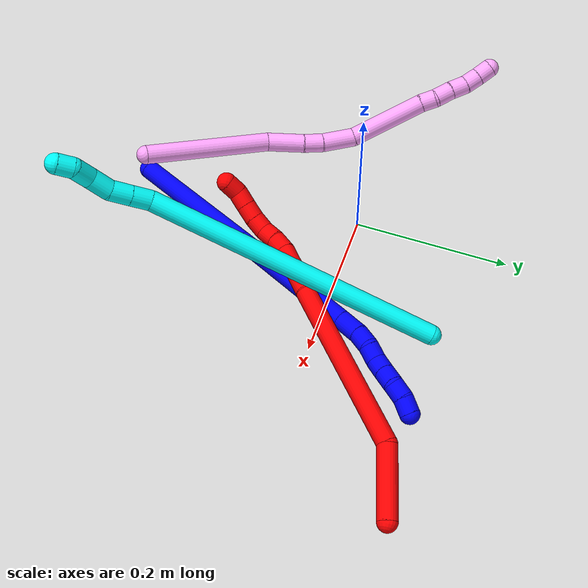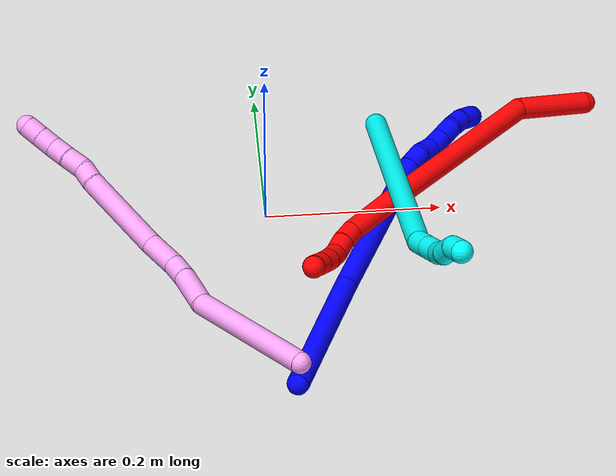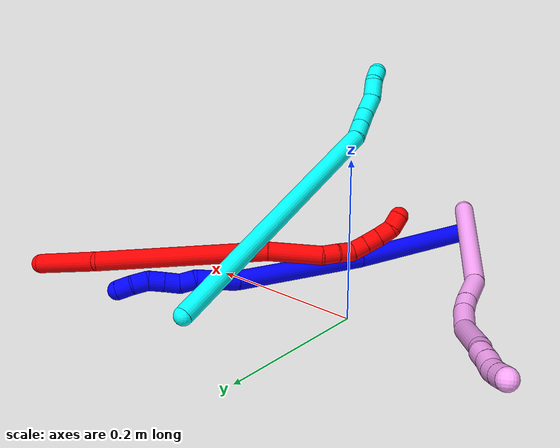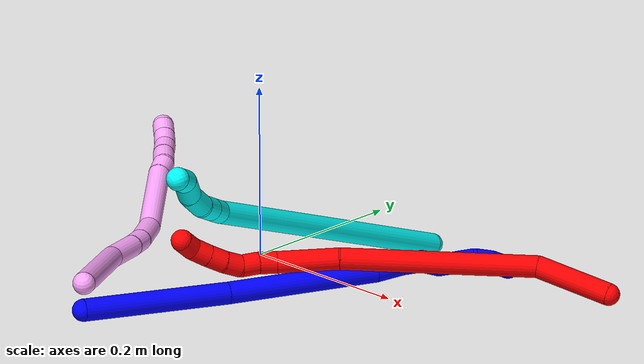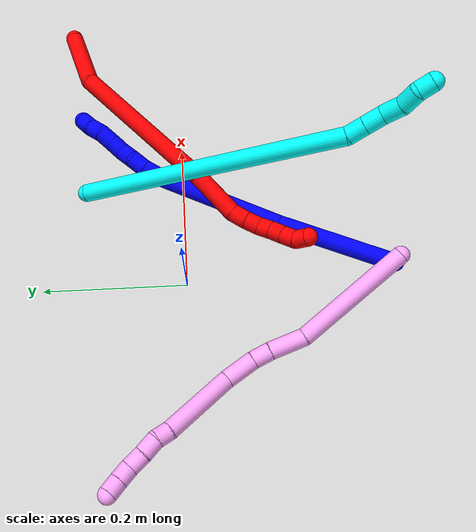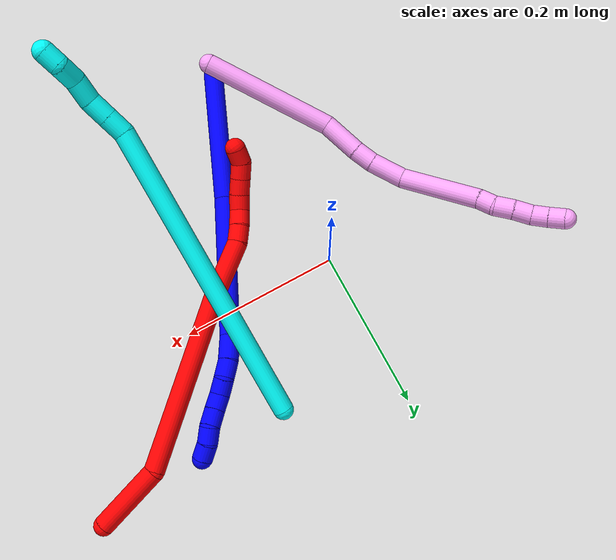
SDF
<sdf version="1.7">
 <world name="default">
  <plugin name="TubeGeneratorPlugin" filename="libtube_generator_plugin.so"/>
  <model name="photoneo_s_sensor">
   <static>1</static>
   <pose>0 0 2 1.57079 1.57079 3.14159</pose>
   <link name="link">
    <inertial><mass>0.1</mass></inertial>
    <sensor name="sensor" type="depth">
     <update_rate>30</update_rate>
     <camera>
      <horizontal_fov>1.22</horizontal_fov>
      <image><width>1920</width><height>1200</height><format>B8G8R8</format></image>
      <clip><near>0.1</near><far>4</far></clip>
      <depth_camera><output>points</output></depth_camera>
     </camera>
     <plugin name="camera_plugin" filename="libgazebo_ros_depth_camera.so">
      <baseline>0.2</baseline>
      <alwaysOn>1</alwaysOn>
      <updateRate>0.0</updateRate>
      <cameraName>camera_ir</cameraName>
      <imageTopicName>/camera/color/image_raw</imageTopicName>
      <cameraInfoTopicName>/camera/color/camera_info</cameraInfoTopicName>
      <depthImageTopicName>/camera/depth/image_raw</depthImageTopicName>
      <depthImageCameraInfoTopicName>/camera/depth/camera_info</depthImageCameraInfoTopicName>
      <pointCloudTopicName>/camera/depth/points</pointCloudTopicName>
      <frameName>fr_optical</frameName>
      <pointCloudCutoff>0.1</pointCloudCutoff>
      <pointCloudCutoffMax>2.0</pointCloudCutoffMax>
      <distortionK1>0</distortionK1>
      <distortionK2>0</distortionK2>
      <distortionK3>0</distortionK3>
      <distortionT1>0</distortionT1>
      <distortionT2>0</distortionT2>
      <CxPrime>0</CxPrime>
      <Cx>0</Cx>
      <Cy>0</Cy>
      <focalLength>0</focalLength>
      <hackBaseline>0</hackBaseline>
     </plugin>
    </sensor>
   </link>
  </model>
  <gravity>0 0 -9.8</gravity>
  <magnetic_field>6e-06 2.3e-05 -4.2e-05</magnetic_field>
  <atmosphere type="adiabatic"/>
  <physics name="default_physics" default="0" type="ode">
   <max_step_size>0.003</max_step_size>
   <real_time_factor>1</real_time_factor>
   <real_time_update_rate>1000</real_time_update_rate>
   <max_contacts>10000</max_contacts>
   <ode>
    <solver>
     <type>quick</type>
     <iters>100</iters>
     <sor>1.3</sor>
     <use_dynamic_moi_rescaling>0</use_dynamic_moi_rescaling>
    </solver>
    <constraints>
     <contact_max_correcting_vel>0</contact_max_correcting_vel>
     <contact_surface_layer>0.001</contact_surface_layer>
     <cfm>0</cfm>
     <erp>0.2</erp>
    </constraints>
   </ode>
  </physics>
  <scene><ambient>0.4 0.4 0.4 1</ambient><background>0.7 0.7 0.7 1</background><shadows>0</shadows></scene>
  <audio><device>default</device></audio>
  <spherical_coordinates>
   <surface_model>EARTH_WGS84</surface_model>
   <latitude_deg>0</latitude_deg>
   <longitude_deg>0</longitude_deg>
   <elevation>0</elevation>
   <heading_deg>0</heading_deg>
  </spherical_coordinates>
  <model name="bin">
   <static>1</static>
   <link name="bottom">
    <collision name="collision-bottom">
     <pose>0 0 -0.01 0 -0 0</pose>
     <geometry><box><size>0.8 0.6 0.02</size></box></geometry>
     <surface>
      <friction><ode><mu>100</mu><mu2>100</mu2></ode></friction>
      <contact><collide_bitmask>65535</collide_bitmask></contact>
     </surface>
    </collision>
   </link>
   <link name="west_wall">
    <collision name="collision-west_wall">
     <pose>-0.41 0 0.1 0 -0 0</pose>
     <geometry><box><size>0.02 0.6 0.2</size></box></geometry>
     <surface>
      <friction><ode><mu>100</mu><mu2>100</mu2></ode></friction>
      <contact><collide_bitmask>65535</collide_bitmask></contact>
     </surface>
    </collision>
   </link>
   <link name="east_wall">
    <collision name="collision-east_wall">
     <pose>0.41 0 0.1 0 -0 0</pose>
     <geometry><box><size>0.02 0.6 0.2</size></box></geometry>
     <surface>
      <friction><ode><mu>100</mu><mu2>100</mu2></ode></friction>
      <contact><collide_bitmask>65535</collide_bitmask></contact>
     </surface>
    </collision>
   </link>
   <link name="south_wall">
    <collision name="collision-south_wall">
     <pose>0 -0.31 0.1 0 -0 0</pose>
     <geometry><box><size>0.8 0.02 0.2</size></box></geometry>
     <surface>
      <friction><ode><mu>100</mu><mu2>100</mu2></ode></friction>
      <contact><collide_bitmask>65535</collide_bitmask></contact>
     </surface>
    </collision>
   </link>
   <link name="north_wall">
    <collision name="collision-north_wall">
     <pose>0 0.31 0.1 0 -0 0</pose>
     <geometry><box><size>0.8 0.02 0.2</size></box></geometry>
     <surface>
      <friction><ode><mu>100</mu><mu2>100</mu2></ode></friction>
      <contact><collide_bitmask>65535</collide_bitmask></contact>
     </surface>
    </collision>
   </link>
  </model>
  <model name="1">
   <static>0</static>
   <link name="1">
    <collision name="collision-cylinder-e_1_1_4">
     <pose>0.024286 0.045576 -0.06728 -2.54618 0.290408 -0.889516</pose>
     <geometry><cylinder><radius>0.0125</radius><length>0.16963</length></cylinder></geometry>
     <surface>
      <friction><ode><mu>1.16</mu><mu2>1.16</mu2><slip1>0</slip1><slip2>0</slip2></ode></friction>
      <contact><ode><kp>1e+06</kp><kd>1</kd><max_vel>0</max_vel><min_depth>0.001</min_depth></ode></contact>
     </surface>
    </collision>
    <visual name="visual-cylinder-e_1_1_4">
     <pose>0.024286 0.045576 -0.06728 -2.54618 0.290408 -0.889516</pose>
     <geometry><cylinder><radius>0.0125</radius><length>0.16963</length></cylinder></geometry>
     <material><ambient>0 0 1 1</ambient></material>
    </visual>
    <collision name="collision-cylinder-e_2_4_5">
     <pose>0.069329 0.136711 -0.206896 -2.57954 0.238193 -0.785953</pose>
     <geometry><cylinder><radius>0.0125</radius><length>0.175943</length></cylinder></geometry>
     <surface>
      <friction><ode><mu>1.16</mu><mu2>1.16</mu2><slip1>0</slip1><slip2>0</slip2></ode></friction>
      <contact><ode><kp>1e+06</kp><kd>1</kd><max_vel>0</max_vel><min_depth>0.001</min_depth></ode></contact>
     </surface>
    </collision>
    <visual name="visual-cylinder-e_2_4_5">
     <pose>0.069329 0.136711 -0.206896 -2.57954 0.238193 -0.785953</pose>
     <geometry><cylinder><radius>0.0125</radius><length>0.175943</length></cylinder></geometry>
     <material><ambient>0 0 1 1</ambient></material>
    </visual>
    <collision name="collision-cylinder-e_3_5_6">
     <pose>0.091733 0.188823 -0.293409 -2.70855 0.105061 -0.469246</pose>
     <geometry><cylinder><radius>0.0125</radius><length>0.031411</length></cylinder></geometry>
     <surface>
      <friction><ode><mu>1.16</mu><mu2>1.16</mu2><slip1>0</slip1><slip2>0</slip2></ode></friction>
      <contact><ode><kp>1e+06</kp><kd>1</kd><max_vel>0</max_vel><min_depth>0.001</min_depth></ode></contact>
     </surface>
    </collision>
    <visual name="visual-cylinder-e_3_5_6">
     <pose>0.091733 0.188823 -0.293409 -2.70855 0.105061 -0.469246</pose>
     <geometry><cylinder><radius>0.0125</radius><length>0.031411</length></cylinder></geometry>
     <material><ambient>0 0 1 1</ambient></material>
    </visual>
    <collision name="collision-cylinder-e_4_6_7">
     <pose>0.092827 0.200969 -0.317193 -2.61454 -0.049691 0.183696</pose>
     <geometry><cylinder><radius>0.0125</radius><length>0.022258</length></cylinder></geometry>
     <surface>
      <friction><ode><mu>1.16</mu><mu2>1.16</mu2><slip1>0</slip1><slip2>0</slip2></ode></friction>
      <contact><ode><kp>1e+06</kp><kd>1</kd><max_vel>0</max_vel><min_depth>0.001</min_depth></ode></contact>
     </surface>
    </collision>
    <visual name="visual-cylinder-e_4_6_7">
     <pose>0.092827 0.200969 -0.317193 -2.61454 -0.049691 0.183696</pose>
     <geometry><cylinder><radius>0.0125</radius><length>0.022258</length></cylinder></geometry>
     <material><ambient>0 0 1 1</ambient></material>
    </visual>
    <collision name="collision-cylinder-e_5_7_8">
     <pose>0.092258 0.214561 -0.333128 -2.23988 -0.001602 0.003309</pose>
     <geometry><cylinder><radius>0.0125</radius><length>0.020403</length></cylinder></geometry>
     <surface>
      <friction><ode><mu>1.16</mu><mu2>1.16</mu2><slip1>0</slip1><slip2>0</slip2></ode></friction>
      <contact><ode><kp>1e+06</kp><kd>1</kd><max_vel>0</max_vel><min_depth>0.001</min_depth></ode></contact>
     </surface>
    </collision>
    <visual name="visual-cylinder-e_5_7_8">
     <pose>0.092258 0.214561 -0.333128 -2.23988 -0.001602 0.003309</pose>
     <geometry><cylinder><radius>0.0125</radius><length>0.020403</length></cylinder></geometry>
     <material><ambient>0 0 1 1</ambient></material>
    </visual>
    <collision name="collision-cylinder-e_6_8_9">
     <pose>0.090992 0.22744 -0.348107 -2.6283 -0.125103 0.468558</pose>
     <geometry><cylinder><radius>0.0125</radius><length>0.020019</length></cylinder></geometry>
     <surface>
      <friction><ode><mu>1.16</mu><mu2>1.16</mu2><slip1>0</slip1><slip2>0</slip2></ode></friction>
      <contact><ode><kp>1e+06</kp><kd>1</kd><max_vel>0</max_vel><min_depth>0.001</min_depth></ode></contact>
     </surface>
    </collision>
    <visual name="visual-cylinder-e_6_8_9">
     <pose>0.090992 0.22744 -0.348107 -2.6283 -0.125103 0.468558</pose>
     <geometry><cylinder><radius>0.0125</radius><length>0.020019</length></cylinder></geometry>
     <material><ambient>0 0 1 1</ambient></material>
    </visual>
    <collision name="collision-cylinder-e_7_9_10">
     <pose>0.088758 0.237253 -0.365474 -2.62634 -0.098095 0.368375</pose>
     <geometry><cylinder><radius>0.0125</radius><length>0.020131</length></cylinder></geometry>
     <surface>
      <friction><ode><mu>1.16</mu><mu2>1.16</mu2><slip1>0</slip1><slip2>0</slip2></ode></friction>
      <contact><ode><kp>1e+06</kp><kd>1</kd><max_vel>0</max_vel><min_depth>0.001</min_depth></ode></contact>
     </surface>
    </collision>
    <visual name="visual-cylinder-e_7_9_10">
     <pose>0.088758 0.237253 -0.365474 -2.62634 -0.098095 0.368375</pose>
     <geometry><cylinder><radius>0.0125</radius><length>0.020131</length></cylinder></geometry>
     <material><ambient>0 0 1 1</ambient></material>
    </visual>
    <collision name="collision-cylinder-e_8_10_11">
     <pose>0.088775 0.249444 -0.381018 -2.32574 0.100327 -0.231308</pose>
     <geometry><cylinder><radius>0.0125</radius><length>0.020025</length></cylinder></geometry>
     <surface>
      <friction><ode><mu>1.16</mu><mu2>1.16</mu2><slip1>0</slip1><slip2>0</slip2></ode></friction>
      <contact><ode><kp>1e+06</kp><kd>1</kd><max_vel>0</max_vel><min_depth>0.001</min_depth></ode></contact>
     </surface>
    </collision>
    <visual name="visual-cylinder-e_8_10_11">
     <pose>0.088775 0.249444 -0.381018 -2.32574 0.100327 -0.231308</pose>
     <geometry><cylinder><radius>0.0125</radius><length>0.020025</length></cylinder></geometry>
     <material><ambient>0 0 1 1</ambient></material>
    </visual>
    <collision name="collision-cylinder-e_9_11_2">
     <pose>0.089337 0.265281 -0.393135 -2.12326 -0.043658 0.078175</pose>
     <geometry><cylinder><radius>0.0125</radius><length>0.020181</length></cylinder></geometry>
     <surface>
      <friction><ode><mu>1.16</mu><mu2>1.16</mu2><slip1>0</slip1><slip2>0</slip2></ode></friction>
      <contact><ode><kp>1e+06</kp><kd>1</kd><max_vel>0</max_vel><min_depth>0.001</min_depth></ode></contact>
     </surface>
    </collision>
    <visual name="visual-cylinder-e_9_11_2">
     <pose>0.089337 0.265281 -0.393135 -2.12326 -0.043658 0.078175</pose>
     <geometry><cylinder><radius>0.0125</radius><length>0.020181</length></cylinder></geometry>
     <material><ambient>0 0 1 1</ambient></material>
    </visual>
    <collision name="collision-sphere-2">
     <pose>0.088897 0.273862 -0.398425 0 -0 0</pose>
     <geometry><sphere><radius>0.0125</radius></sphere></geometry>
     <surface>
      <friction><ode><mu>1.16</mu><mu2>1.16</mu2><slip1>0</slip1><slip2>0</slip2></ode></friction>
      <contact><ode><kp>1e+06</kp><kd>1</kd><max_vel>0</max_vel><min_depth>0.001</min_depth></ode></contact>
     </surface>
    </collision>
    <visual name="visual-sphere-2">
     <pose>0.088897 0.273862 -0.398425 0 -0 0</pose>
     <geometry><sphere><radius>0.0125</radius></sphere></geometry>
     <material><ambient>0 0 1 1</ambient></material>
    </visual>
    <collision name="collision-sphere-11">
     <pose>0.089778 0.2567 -0.387844 0 -0 0</pose>
     <geometry><sphere><radius>0.0125</radius></sphere></geometry>
     <surface>
      <friction><ode><mu>1.16</mu><mu2>1.16</mu2><slip1>0</slip1><slip2>0</slip2></ode></friction>
      <contact><ode><kp>1e+06</kp><kd>1</kd><max_vel>0</max_vel><min_depth>0.001</min_depth></ode></contact>
     </surface>
    </collision>
    <visual name="visual-sphere-11">
     <pose>0.089778 0.2567 -0.387844 0 -0 0</pose>
     <geometry><sphere><radius>0.0125</radius></sphere></geometry>
     <material><ambient>0 0 1 1</ambient></material>
    </visual>
    <collision name="collision-sphere-10">
     <pose>0.087772 0.242188 -0.374191 0 -0 0</pose>
     <geometry><sphere><radius>0.0125</radius></sphere></geometry>
     <surface>
      <friction><ode><mu>1.16</mu><mu2>1.16</mu2><slip1>0</slip1><slip2>0</slip2></ode></friction>
      <contact><ode><kp>1e+06</kp><kd>1</kd><max_vel>0</max_vel><min_depth>0.001</min_depth></ode></contact>
     </surface>
    </collision>
    <visual name="visual-sphere-10">
     <pose>0.087772 0.242188 -0.374191 0 -0 0</pose>
     <geometry><sphere><radius>0.0125</radius></sphere></geometry>
     <material><ambient>0 0 1 1</ambient></material>
    </visual>
    <collision name="collision-sphere-9">
     <pose>0.089743 0.232317 -0.356758 0 -0 0</pose>
     <geometry><sphere><radius>0.0125</radius></sphere></geometry>
     <surface>
      <friction><ode><mu>1.16</mu><mu2>1.16</mu2><slip1>0</slip1><slip2>0</slip2></ode></friction>
      <contact><ode><kp>1e+06</kp><kd>1</kd><max_vel>0</max_vel><min_depth>0.001</min_depth></ode></contact>
     </surface>
    </collision>
    <visual name="visual-sphere-9">
     <pose>0.089743 0.232317 -0.356758 0 -0 0</pose>
     <geometry><sphere><radius>0.0125</radius></sphere></geometry>
     <material><ambient>0 0 1 1</ambient></material>
    </visual>
    <collision name="collision-sphere-4">
     <pose>0.048572 0.091153 -0.134559 0 -0 0</pose>
     <geometry><sphere><radius>0.0125</radius></sphere></geometry>
     <surface>
      <friction><ode><mu>1.16</mu><mu2>1.16</mu2><slip1>0</slip1><slip2>0</slip2></ode></friction>
      <contact><ode><kp>1e+06</kp><kd>1</kd><max_vel>0</max_vel><min_depth>0.001</min_depth></ode></contact>
     </surface>
    </collision>
    <visual name="visual-sphere-4">
     <pose>0.048572 0.091153 -0.134559 0 -0 0</pose>
     <geometry><sphere><radius>0.0125</radius></sphere></geometry>
     <material><ambient>0 0 1 1</ambient></material>
    </visual>
    <collision name="collision-sphere-1">
     <geometry><sphere><radius>0.0125</radius></sphere></geometry>
     <surface>
      <friction><ode><mu>1.16</mu><mu2>1.16</mu2><slip1>0</slip1><slip2>0</slip2></ode></friction>
      <contact><ode><kp>1e+06</kp><kd>1</kd><max_vel>0</max_vel><min_depth>0.001</min_depth></ode></contact>
     </surface>
    </collision>
    <visual name="visual-sphere-1">
     <geometry><sphere><radius>0.0125</radius></sphere></geometry>
     <material><ambient>0 0 1 1</ambient></material>
    </visual>
    <collision name="collision-sphere-8">
     <pose>0.092241 0.222563 -0.339455 0 -0 0</pose>
     <geometry><sphere><radius>0.0125</radius></sphere></geometry>
     <surface>
      <friction><ode><mu>1.16</mu><mu2>1.16</mu2><slip1>0</slip1><slip2>0</slip2></ode></friction>
      <contact><ode><kp>1e+06</kp><kd>1</kd><max_vel>0</max_vel><min_depth>0.001</min_depth></ode></contact>
     </surface>
    </collision>
    <visual name="visual-sphere-8">
     <pose>0.092241 0.222563 -0.339455 0 -0 0</pose>
     <geometry><sphere><radius>0.0125</radius></sphere></geometry>
     <material><ambient>0 0 1 1</ambient></material>
    </visual>
    <collision name="collision-sphere-5">
     <pose>0.090086 0.182269 -0.279232 0 -0 0</pose>
     <geometry><sphere><radius>0.0125</radius></sphere></geometry>
     <surface>
      <friction><ode><mu>1.16</mu><mu2>1.16</mu2><slip1>0</slip1><slip2>0</slip2></ode></friction>
      <contact><ode><kp>1e+06</kp><kd>1</kd><max_vel>0</max_vel><min_depth>0.001</min_depth></ode></contact>
     </surface>
    </collision>
    <visual name="visual-sphere-5">
     <pose>0.090086 0.182269 -0.279232 0 -0 0</pose>
     <geometry><sphere><radius>0.0125</radius></sphere></geometry>
     <material><ambient>0 0 1 1</ambient></material>
    </visual>
    <collision name="collision-sphere-6">
     <pose>0.09338 0.195378 -0.307586 0 -0 0</pose>
     <geometry><sphere><radius>0.0125</radius></sphere></geometry>
     <surface>
      <friction><ode><mu>1.16</mu><mu2>1.16</mu2><slip1>0</slip1><slip2>0</slip2></ode></friction>
      <contact><ode><kp>1e+06</kp><kd>1</kd><max_vel>0</max_vel><min_depth>0.001</min_depth></ode></contact>
     </surface>
    </collision>
    <visual name="visual-sphere-6">
     <pose>0.09338 0.195378 -0.307586 0 -0 0</pose>
     <geometry><sphere><radius>0.0125</radius></sphere></geometry>
     <material><ambient>0 0 1 1</ambient></material>
    </visual>
    <collision name="collision-sphere-7">
     <pose>0.092274 0.20656 -0.3268 0 -0 0</pose>
     <geometry><sphere><radius>0.0125</radius></sphere></geometry>
     <surface>
      <friction><ode><mu>1.16</mu><mu2>1.16</mu2><slip1>0</slip1><slip2>0</slip2></ode></friction>
      <contact><ode><kp>1e+06</kp><kd>1</kd><max_vel>0</max_vel><min_depth>0.001</min_depth></ode></contact>
     </surface>
    </collision>
    <visual name="visual-sphere-7">
     <pose>0.092274 0.20656 -0.3268 0 -0 0</pose>
     <geometry><sphere><radius>0.0125</radius></sphere></geometry>
     <material><ambient>0 0 1 1</ambient></material>
    </visual>
    <inertial>
     <pose>0.060673 0.132489 -0.201555 0 -0 0</pose>
     <mass>0.5</mass>
     <inertia>
      <ixx>-4e-05</ixx>
      <ixy>0</ixy>
      <ixz>0</ixz>
      <iyy>-0.001011</iyy>
      <iyz>0</iyz>
      <izz>-0.000726</izz>
     </inertia>
    </inertial>
   </link>
   <pose>0.015284 -0.288462 0.017858 -2.21345 0.286476 2.45443</pose>
  </model>
  <model name="2">
   <static>0</static>
   <link name="2">
    <collision name="collision-cylinder-e_1_1_4">
     <pose>-0.007925 -0.003229 -0.042966 3.06659 -0.181894 -2.36102</pose>
     <geometry><cylinder><radius>0.0125</radius><length>0.087619</length></cylinder></geometry>
     <surface>
      <friction><ode><mu>1.16</mu><mu2>1.16</mu2><slip1>0</slip1><slip2>0</slip2></ode></friction>
      <contact><ode><kp>1e+06</kp><kd>1</kd><max_vel>0</max_vel><min_depth>0.001</min_depth></ode></contact>
     </surface>
    </collision>
    <visual name="visual-cylinder-e_1_1_4">
     <pose>-0.007925 -0.003229 -0.042966 3.06659 -0.181894 -2.36102</pose>
     <geometry><cylinder><radius>0.0125</radius><length>0.087619</length></cylinder></geometry>
     <material><ambient>1 0 0 1</ambient></material>
    </visual>
    <collision name="collision-cylinder-e_2_4_5">
     <pose>-0.068903 -0.04935 -0.172375 2.68099 -0.502669 -1.66155</pose>
     <geometry><cylinder><radius>0.0125</radius><length>0.220246</length></cylinder></geometry>
     <surface>
      <friction><ode><mu>1.16</mu><mu2>1.16</mu2><slip1>0</slip1><slip2>0</slip2></ode></friction>
      <contact><ode><kp>1e+06</kp><kd>1</kd><max_vel>0</max_vel><min_depth>0.001</min_depth></ode></contact>
     </surface>
    </collision>
    <visual name="visual-cylinder-e_2_4_5">
     <pose>-0.068903 -0.04935 -0.172375 2.68099 -0.502669 -1.66155</pose>
     <geometry><cylinder><radius>0.0125</radius><length>0.220246</length></cylinder></geometry>
     <material><ambient>1 0 0 1</ambient></material>
    </visual>
    <collision name="collision-cylinder-e_3_5_6">
     <pose>-0.135319 -0.109112 -0.286566 2.59534 -0.390389 -1.22921</pose>
     <geometry><cylinder><radius>0.0125</radius><length>0.070227</length></cylinder></geometry>
     <surface>
      <friction><ode><mu>1.16</mu><mu2>1.16</mu2><slip1>0</slip1><slip2>0</slip2></ode></friction>
      <contact><ode><kp>1e+06</kp><kd>1</kd><max_vel>0</max_vel><min_depth>0.001</min_depth></ode></contact>
     </surface>
    </collision>
    <visual name="visual-cylinder-e_3_5_6">
     <pose>-0.135319 -0.109112 -0.286566 2.59534 -0.390389 -1.22921</pose>
     <geometry><cylinder><radius>0.0125</radius><length>0.070227</length></cylinder></geometry>
     <material><ambient>1 0 0 1</ambient></material>
    </visual>
    <collision name="collision-cylinder-e_4_6_7">
     <pose>-0.155353 -0.130664 -0.321192 2.54398 -0.675745 -1.70199</pose>
     <geometry><cylinder><radius>0.0125</radius><length>0.021333</length></cylinder></geometry>
     <surface>
      <friction><ode><mu>1.16</mu><mu2>1.16</mu2><slip1>0</slip1><slip2>0</slip2></ode></friction>
      <contact><ode><kp>1e+06</kp><kd>1</kd><max_vel>0</max_vel><min_depth>0.001</min_depth></ode></contact>
     </surface>
    </collision>
    <visual name="visual-cylinder-e_4_6_7">
     <pose>-0.155353 -0.130664 -0.321192 2.54398 -0.675745 -1.70199</pose>
     <geometry><cylinder><radius>0.0125</radius><length>0.021333</length></cylinder></geometry>
     <material><ambient>1 0 0 1</ambient></material>
    </visual>
    <collision name="collision-cylinder-e_5_7_8">
     <pose>-0.168609 -0.140879 -0.33353 2.34935 -0.702838 -1.43952</pose>
     <geometry><cylinder><radius>0.0125</radius><length>0.020371</length></cylinder></geometry>
     <surface>
      <friction><ode><mu>1.16</mu><mu2>1.16</mu2><slip1>0</slip1><slip2>0</slip2></ode></friction>
      <contact><ode><kp>1e+06</kp><kd>1</kd><max_vel>0</max_vel><min_depth>0.001</min_depth></ode></contact>
     </surface>
    </collision>
    <visual name="visual-cylinder-e_5_7_8">
     <pose>-0.168609 -0.140879 -0.33353 2.34935 -0.702838 -1.43952</pose>
     <geometry><cylinder><radius>0.0125</radius><length>0.020371</length></cylinder></geometry>
     <material><ambient>1 0 0 1</ambient></material>
    </visual>
    <collision name="collision-cylinder-e_6_8_9">
     <pose>-0.183229 -0.147998 -0.344873 2.87847 -0.921905 -2.62081</pose>
     <geometry><cylinder><radius>0.0125</radius><length>0.020173</length></cylinder></geometry>
     <surface>
      <friction><ode><mu>1.16</mu><mu2>1.16</mu2><slip1>0</slip1><slip2>0</slip2></ode></friction>
      <contact><ode><kp>1e+06</kp><kd>1</kd><max_vel>0</max_vel><min_depth>0.001</min_depth></ode></contact>
     </surface>
    </collision>
    <visual name="visual-cylinder-e_6_8_9">
     <pose>-0.183229 -0.147998 -0.344873 2.87847 -0.921905 -2.62081</pose>
     <geometry><cylinder><radius>0.0125</radius><length>0.020173</length></cylinder></geometry>
     <material><ambient>1 0 0 1</ambient></material>
    </visual>
    <collision name="collision-cylinder-e_7_9_10">
     <pose>-0.19885 -0.150097 -0.357263 3.06279 -0.860416 -2.9702</pose>
     <geometry><cylinder><radius>0.0125</radius><length>0.020009</length></cylinder></geometry>
     <surface>
      <friction><ode><mu>1.16</mu><mu2>1.16</mu2><slip1>0</slip1><slip2>0</slip2></ode></friction>
      <contact><ode><kp>1e+06</kp><kd>1</kd><max_vel>0</max_vel><min_depth>0.001</min_depth></ode></contact>
     </surface>
    </collision>
    <visual name="visual-cylinder-e_7_9_10">
     <pose>-0.19885 -0.150097 -0.357263 3.06279 -0.860416 -2.9702</pose>
     <geometry><cylinder><radius>0.0125</radius><length>0.020009</length></cylinder></geometry>
     <material><ambient>1 0 0 1</ambient></material>
    </visual>
    <collision name="collision-cylinder-e_8_10_11">
     <pose>-0.214089 -0.150592 -0.37021 -3.13878 -0.871055 3.13554</pose>
     <geometry><cylinder><radius>0.0125</radius><length>0.020009</length></cylinder></geometry>
     <surface>
      <friction><ode><mu>1.16</mu><mu2>1.16</mu2><slip1>0</slip1><slip2>0</slip2></ode></friction>
      <contact><ode><kp>1e+06</kp><kd>1</kd><max_vel>0</max_vel><min_depth>0.001</min_depth></ode></contact>
     </surface>
    </collision>
    <visual name="visual-cylinder-e_8_10_11">
     <pose>-0.214089 -0.150592 -0.37021 -3.13878 -0.871055 3.13554</pose>
     <geometry><cylinder><radius>0.0125</radius><length>0.020009</length></cylinder></geometry>
     <material><ambient>1 0 0 1</ambient></material>
    </visual>
    <collision name="collision-cylinder-e_9_11_2">
     <pose>-0.23123 -0.148587 -0.379133 -2.46603 -1.2476 2.23348</pose>
     <geometry><cylinder><radius>0.0125</radius><length>0.020012</length></cylinder></geometry>
     <surface>
      <friction><ode><mu>1.16</mu><mu2>1.16</mu2><slip1>0</slip1><slip2>0</slip2></ode></friction>
      <contact><ode><kp>1e+06</kp><kd>1</kd><max_vel>0</max_vel><min_depth>0.001</min_depth></ode></contact>
     </surface>
    </collision>
    <visual name="visual-cylinder-e_9_11_2">
     <pose>-0.23123 -0.148587 -0.379133 -2.46603 -1.2476 2.23348</pose>
     <geometry><cylinder><radius>0.0125</radius><length>0.020012</length></cylinder></geometry>
     <material><ambient>1 0 0 1</ambient></material>
    </visual>
    <collision name="collision-sphere-2">
     <pose>-0.240718 -0.1466 -0.381613 0 -0 0</pose>
     <geometry><sphere><radius>0.0125</radius></sphere></geometry>
     <surface>
      <friction><ode><mu>1.16</mu><mu2>1.16</mu2><slip1>0</slip1><slip2>0</slip2></ode></friction>
      <contact><ode><kp>1e+06</kp><kd>1</kd><max_vel>0</max_vel><min_depth>0.001</min_depth></ode></contact>
     </surface>
    </collision>
    <visual name="visual-sphere-2">
     <pose>-0.240718 -0.1466 -0.381613 0 -0 0</pose>
     <geometry><sphere><radius>0.0125</radius></sphere></geometry>
     <material><ambient>1 0 0 1</ambient></material>
    </visual>
    <collision name="collision-sphere-11">
     <pose>-0.221742 -0.150574 -0.376653 0 -0 0</pose>
     <geometry><sphere><radius>0.0125</radius></sphere></geometry>
     <surface>
      <friction><ode><mu>1.16</mu><mu2>1.16</mu2><slip1>0</slip1><slip2>0</slip2></ode></friction>
      <contact><ode><kp>1e+06</kp><kd>1</kd><max_vel>0</max_vel><min_depth>0.001</min_depth></ode></contact>
     </surface>
    </collision>
    <visual name="visual-sphere-11">
     <pose>-0.221742 -0.150574 -0.376653 0 -0 0</pose>
     <geometry><sphere><radius>0.0125</radius></sphere></geometry>
     <material><ambient>1 0 0 1</ambient></material>
    </visual>
    <collision name="collision-sphere-10">
     <pose>-0.206435 -0.15061 -0.363767 0 -0 0</pose>
     <geometry><sphere><radius>0.0125</radius></sphere></geometry>
     <surface>
      <friction><ode><mu>1.16</mu><mu2>1.16</mu2><slip1>0</slip1><slip2>0</slip2></ode></friction>
      <contact><ode><kp>1e+06</kp><kd>1</kd><max_vel>0</max_vel><min_depth>0.001</min_depth></ode></contact>
     </surface>
    </collision>
    <visual name="visual-sphere-10">
     <pose>-0.206435 -0.15061 -0.363767 0 -0 0</pose>
     <geometry><sphere><radius>0.0125</radius></sphere></geometry>
     <material><ambient>1 0 0 1</ambient></material>
    </visual>
    <collision name="collision-sphere-9">
     <pose>-0.191266 -0.149583 -0.350759 0 -0 0</pose>
     <geometry><sphere><radius>0.0125</radius></sphere></geometry>
     <surface>
      <friction><ode><mu>1.16</mu><mu2>1.16</mu2><slip1>0</slip1><slip2>0</slip2></ode></friction>
      <contact><ode><kp>1e+06</kp><kd>1</kd><max_vel>0</max_vel><min_depth>0.001</min_depth></ode></contact>
     </surface>
    </collision>
    <visual name="visual-sphere-9">
     <pose>-0.191266 -0.149583 -0.350759 0 -0 0</pose>
     <geometry><sphere><radius>0.0125</radius></sphere></geometry>
     <material><ambient>1 0 0 1</ambient></material>
    </visual>
    <collision name="collision-sphere-4">
     <pose>-0.01585 -0.006457 -0.085931 0 -0 0</pose>
     <geometry><sphere><radius>0.0125</radius></sphere></geometry>
     <surface>
      <friction><ode><mu>1.16</mu><mu2>1.16</mu2><slip1>0</slip1><slip2>0</slip2></ode></friction>
      <contact><ode><kp>1e+06</kp><kd>1</kd><max_vel>0</max_vel><min_depth>0.001</min_depth></ode></contact>
     </surface>
    </collision>
    <visual name="visual-sphere-4">
     <pose>-0.01585 -0.006457 -0.085931 0 -0 0</pose>
     <geometry><sphere><radius>0.0125</radius></sphere></geometry>
     <material><ambient>1 0 0 1</ambient></material>
    </visual>
    <collision name="collision-sphere-1">
     <geometry><sphere><radius>0.0125</radius></sphere></geometry>
     <surface>
      <friction><ode><mu>1.16</mu><mu2>1.16</mu2><slip1>0</slip1><slip2>0</slip2></ode></friction>
      <contact><ode><kp>1e+06</kp><kd>1</kd><max_vel>0</max_vel><min_depth>0.001</min_depth></ode></contact>
     </surface>
    </collision>
    <visual name="visual-sphere-1">
     <geometry><sphere><radius>0.0125</radius></sphere></geometry>
     <material><ambient>1 0 0 1</ambient></material>
    </visual>
    <collision name="collision-sphere-8">
     <pose>-0.175193 -0.146412 -0.338988 0 -0 0</pose>
     <geometry><sphere><radius>0.0125</radius></sphere></geometry>
     <surface>
      <friction><ode><mu>1.16</mu><mu2>1.16</mu2><slip1>0</slip1><slip2>0</slip2></ode></friction>
      <contact><ode><kp>1e+06</kp><kd>1</kd><max_vel>0</max_vel><min_depth>0.001</min_depth></ode></contact>
     </surface>
    </collision>
    <visual name="visual-sphere-8">
     <pose>-0.175193 -0.146412 -0.338988 0 -0 0</pose>
     <geometry><sphere><radius>0.0125</radius></sphere></geometry>
     <material><ambient>1 0 0 1</ambient></material>
    </visual>
    <collision name="collision-sphere-5">
     <pose>-0.121957 -0.092243 -0.258819 0 -0 0</pose>
     <geometry><sphere><radius>0.0125</radius></sphere></geometry>
     <surface>
      <friction><ode><mu>1.16</mu><mu2>1.16</mu2><slip1>0</slip1><slip2>0</slip2></ode></friction>
      <contact><ode><kp>1e+06</kp><kd>1</kd><max_vel>0</max_vel><min_depth>0.001</min_depth></ode></contact>
     </surface>
    </collision>
    <visual name="visual-sphere-5">
     <pose>-0.121957 -0.092243 -0.258819 0 -0 0</pose>
     <geometry><sphere><radius>0.0125</radius></sphere></geometry>
     <material><ambient>1 0 0 1</ambient></material>
    </visual>
    <collision name="collision-sphere-6">
     <pose>-0.148682 -0.125981 -0.314312 0 -0 0</pose>
     <geometry><sphere><radius>0.0125</radius></sphere></geometry>
     <surface>
      <friction><ode><mu>1.16</mu><mu2>1.16</mu2><slip1>0</slip1><slip2>0</slip2></ode></friction>
      <contact><ode><kp>1e+06</kp><kd>1</kd><max_vel>0</max_vel><min_depth>0.001</min_depth></ode></contact>
     </surface>
    </collision>
    <visual name="visual-sphere-6">
     <pose>-0.148682 -0.125981 -0.314312 0 -0 0</pose>
     <geometry><sphere><radius>0.0125</radius></sphere></geometry>
     <material><ambient>1 0 0 1</ambient></material>
    </visual>
    <collision name="collision-sphere-7">
     <pose>-0.162025 -0.135346 -0.328072 0 -0 0</pose>
     <geometry><sphere><radius>0.0125</radius></sphere></geometry>
     <surface>
      <friction><ode><mu>1.16</mu><mu2>1.16</mu2><slip1>0</slip1><slip2>0</slip2></ode></friction>
      <contact><ode><kp>1e+06</kp><kd>1</kd><max_vel>0</max_vel><min_depth>0.001</min_depth></ode></contact>
     </surface>
    </collision>
    <visual name="visual-sphere-7">
     <pose>-0.162025 -0.135346 -0.328072 0 -0 0</pose>
     <geometry><sphere><radius>0.0125</radius></sphere></geometry>
     <material><ambient>1 0 0 1</ambient></material>
    </visual>
    <inertial>
     <pose>-0.097417 -0.072895 -0.209202 0 -0 0</pose>
     <mass>0.5</mass>
     <inertia>
      <ixx>-0.000981</ixx>
      <ixy>0</ixy>
      <ixz>0</ixz>
      <iyy>-0.000556</iyy>
      <iyz>0</iyz>
      <izz>0.000804</izz>
     </inertia>
    </inertial>
   </link>
   <pose>0.3875 0.155785 0.012526 1.78581 0.492596 1.77907</pose>
  </model>
  <model name="3">
   <static>0</static>
   <link name="3">
    <collision name="collision-cylinder-e_1_1_4">
     <pose>0.018136 -0.107799 0.152611 0.614986 0.096763 0.03075</pose>
     <geometry><cylinder><radius>0.0125</radius><length>0.375444</length></cylinder></geometry>
     <surface>
      <friction><ode><mu>1.16</mu><mu2>1.16</mu2><slip1>0</slip1><slip2>0</slip2></ode></friction>
      <contact><ode><kp>1e+06</kp><kd>1</kd><max_vel>0</max_vel><min_depth>0.001</min_depth></ode></contact>
     </surface>
    </collision>
    <visual name="visual-cylinder-e_1_1_4">
     <pose>0.018136 -0.107799 0.152611 0.614986 0.096763 0.03075</pose>
     <geometry><cylinder><radius>0.0125</radius><length>0.375444</length></cylinder></geometry>
     <material><ambient>0.003922 1 0.996078 1</ambient></material>
    </visual>
    <collision name="collision-cylinder-e_2_4_5">
     <pose>0.034756 -0.224918 0.313364 0.85275 -0.1219 -0.055426</pose>
     <geometry><cylinder><radius>0.0125</radius><length>0.024937</length></cylinder></geometry>
     <surface>
      <friction><ode><mu>1.16</mu><mu2>1.16</mu2><slip1>0</slip1><slip2>0</slip2></ode></friction>
      <contact><ode><kp>1e+06</kp><kd>1</kd><max_vel>0</max_vel><min_depth>0.001</min_depth></ode></contact>
     </surface>
    </collision>
    <visual name="visual-cylinder-e_2_4_5">
     <pose>0.034756 -0.224918 0.313364 0.85275 -0.1219 -0.055426</pose>
     <geometry><cylinder><radius>0.0125</radius><length>0.024937</length></cylinder></geometry>
     <material><ambient>0.003922 1 0.996078 1</ambient></material>
    </visual>
    <collision name="collision-cylinder-e_3_5_6">
     <pose>0.031718 -0.243843 0.329898 0.852691 -0.118823 -0.05402</pose>
     <geometry><cylinder><radius>0.0125</radius><length>0.025688</length></cylinder></geometry>
     <surface>
      <friction><ode><mu>1.16</mu><mu2>1.16</mu2><slip1>0</slip1><slip2>0</slip2></ode></friction>
      <contact><ode><kp>1e+06</kp><kd>1</kd><max_vel>0</max_vel><min_depth>0.001</min_depth></ode></contact>
     </surface>
    </collision>
    <visual name="visual-cylinder-e_3_5_6">
     <pose>0.031718 -0.243843 0.329898 0.852691 -0.118823 -0.05402</pose>
     <geometry><cylinder><radius>0.0125</radius><length>0.025688</length></cylinder></geometry>
     <material><ambient>0.003922 1 0.996078 1</ambient></material>
    </visual>
    <collision name="collision-cylinder-e_4_6_7">
     <pose>0.032668 -0.26465 0.345916 0.973069 0.180464 0.095643</pose>
     <geometry><cylinder><radius>0.0125</radius><length>0.027553</length></cylinder></geometry>
     <surface>
      <friction><ode><mu>1.16</mu><mu2>1.16</mu2><slip1>0</slip1><slip2>0</slip2></ode></friction>
      <contact><ode><kp>1e+06</kp><kd>1</kd><max_vel>0</max_vel><min_depth>0.001</min_depth></ode></contact>
     </surface>
    </collision>
    <visual name="visual-cylinder-e_4_6_7">
     <pose>0.032668 -0.26465 0.345916 0.973069 0.180464 0.095643</pose>
     <geometry><cylinder><radius>0.0125</radius><length>0.027553</length></cylinder></geometry>
     <material><ambient>0.003922 1 0.996078 1</ambient></material>
    </visual>
    <collision name="collision-cylinder-e_5_7_8">
     <pose>0.036693 -0.2881 0.357067 1.29063 0.121219 0.091307</pose>
     <geometry><cylinder><radius>0.0125</radius><length>0.025675</length></cylinder></geometry>
     <surface>
      <friction><ode><mu>1.16</mu><mu2>1.16</mu2><slip1>0</slip1><slip2>0</slip2></ode></friction>
      <contact><ode><kp>1e+06</kp><kd>1</kd><max_vel>0</max_vel><min_depth>0.001</min_depth></ode></contact>
     </surface>
    </collision>
    <visual name="visual-cylinder-e_5_7_8">
     <pose>0.036693 -0.2881 0.357067 1.29063 0.121219 0.091307</pose>
     <geometry><cylinder><radius>0.0125</radius><length>0.025675</length></cylinder></geometry>
     <material><ambient>0.003922 1 0.996078 1</ambient></material>
    </visual>
    <collision name="collision-cylinder-e_6_8_2">
     <pose>0.036864 -0.308148 0.367251 0.864221 -0.133804 -0.06178</pose>
     <geometry><cylinder><radius>0.0125</radius><length>0.020702</length></cylinder></geometry>
     <surface>
      <friction><ode><mu>1.16</mu><mu2>1.16</mu2><slip1>0</slip1><slip2>0</slip2></ode></friction>
      <contact><ode><kp>1e+06</kp><kd>1</kd><max_vel>0</max_vel><min_depth>0.001</min_depth></ode></contact>
     </surface>
    </collision>
    <visual name="visual-cylinder-e_6_8_2">
     <pose>0.036864 -0.308148 0.367251 0.864221 -0.133804 -0.06178</pose>
     <geometry><cylinder><radius>0.0125</radius><length>0.020702</length></cylinder></geometry>
     <material><ambient>0.003922 1 0.996078 1</ambient></material>
    </visual>
    <collision name="collision-sphere-2">
     <pose>0.035484 -0.315951 0.373911 0 -0 0</pose>
     <geometry><sphere><radius>0.0125</radius></sphere></geometry>
     <surface>
      <friction><ode><mu>1.16</mu><mu2>1.16</mu2><slip1>0</slip1><slip2>0</slip2></ode></friction>
      <contact><ode><kp>1e+06</kp><kd>1</kd><max_vel>0</max_vel><min_depth>0.001</min_depth></ode></contact>
     </surface>
    </collision>
    <visual name="visual-sphere-2">
     <pose>0.035484 -0.315951 0.373911 0 -0 0</pose>
     <geometry><sphere><radius>0.0125</radius></sphere></geometry>
     <material><ambient>0.003922 1 0.996078 1</ambient></material>
    </visual>
    <collision name="collision-sphere-4">
     <pose>0.036273 -0.215598 0.305222 0 -0 0</pose>
     <geometry><sphere><radius>0.0125</radius></sphere></geometry>
     <surface>
      <friction><ode><mu>1.16</mu><mu2>1.16</mu2><slip1>0</slip1><slip2>0</slip2></ode></friction>
      <contact><ode><kp>1e+06</kp><kd>1</kd><max_vel>0</max_vel><min_depth>0.001</min_depth></ode></contact>
     </surface>
    </collision>
    <visual name="visual-sphere-4">
     <pose>0.036273 -0.215598 0.305222 0 -0 0</pose>
     <geometry><sphere><radius>0.0125</radius></sphere></geometry>
     <material><ambient>0.003922 1 0.996078 1</ambient></material>
    </visual>
    <collision name="collision-sphere-1">
     <geometry><sphere><radius>0.0125</radius></sphere></geometry>
     <surface>
      <friction><ode><mu>1.16</mu><mu2>1.16</mu2><slip1>0</slip1><slip2>0</slip2></ode></friction>
      <contact><ode><kp>1e+06</kp><kd>1</kd><max_vel>0</max_vel><min_depth>0.001</min_depth></ode></contact>
     </surface>
    </collision>
    <visual name="visual-sphere-1">
     <geometry><sphere><radius>0.0125</radius></sphere></geometry>
     <material><ambient>0.003922 1 0.996078 1</ambient></material>
    </visual>
    <collision name="collision-sphere-8">
     <pose>0.038245 -0.300346 0.360591 0 -0 0</pose>
     <geometry><sphere><radius>0.0125</radius></sphere></geometry>
     <surface>
      <friction><ode><mu>1.16</mu><mu2>1.16</mu2><slip1>0</slip1><slip2>0</slip2></ode></friction>
      <contact><ode><kp>1e+06</kp><kd>1</kd><max_vel>0</max_vel><min_depth>0.001</min_depth></ode></contact>
     </surface>
    </collision>
    <visual name="visual-sphere-8">
     <pose>0.038245 -0.300346 0.360591 0 -0 0</pose>
     <geometry><sphere><radius>0.0125</radius></sphere></geometry>
     <material><ambient>0.003922 1 0.996078 1</ambient></material>
    </visual>
    <collision name="collision-sphere-5">
     <pose>0.03324 -0.234239 0.321506 0 -0 0</pose>
     <geometry><sphere><radius>0.0125</radius></sphere></geometry>
     <surface>
      <friction><ode><mu>1.16</mu><mu2>1.16</mu2><slip1>0</slip1><slip2>0</slip2></ode></friction>
      <contact><ode><kp>1e+06</kp><kd>1</kd><max_vel>0</max_vel><min_depth>0.001</min_depth></ode></contact>
     </surface>
    </collision>
    <visual name="visual-sphere-5">
     <pose>0.03324 -0.234239 0.321506 0 -0 0</pose>
     <geometry><sphere><radius>0.0125</radius></sphere></geometry>
     <material><ambient>0.003922 1 0.996078 1</ambient></material>
    </visual>
    <collision name="collision-sphere-6">
     <pose>0.030195 -0.253447 0.338289 0 -0 0</pose>
     <geometry><sphere><radius>0.0125</radius></sphere></geometry>
     <surface>
      <friction><ode><mu>1.16</mu><mu2>1.16</mu2><slip1>0</slip1><slip2>0</slip2></ode></friction>
      <contact><ode><kp>1e+06</kp><kd>1</kd><max_vel>0</max_vel><min_depth>0.001</min_depth></ode></contact>
     </surface>
    </collision>
    <visual name="visual-sphere-6">
     <pose>0.030195 -0.253447 0.338289 0 -0 0</pose>
     <geometry><sphere><radius>0.0125</radius></sphere></geometry>
     <material><ambient>0.003922 1 0.996078 1</ambient></material>
    </visual>
    <collision name="collision-sphere-7">
     <pose>0.035141 -0.275853 0.353543 0 -0 0</pose>
     <geometry><sphere><radius>0.0125</radius></sphere></geometry>
     <surface>
      <friction><ode><mu>1.16</mu><mu2>1.16</mu2><slip1>0</slip1><slip2>0</slip2></ode></friction>
      <contact><ode><kp>1e+06</kp><kd>1</kd><max_vel>0</max_vel><min_depth>0.001</min_depth></ode></contact>
     </surface>
    </collision>
    <visual name="visual-sphere-7">
     <pose>0.035141 -0.275853 0.353543 0 -0 0</pose>
     <geometry><sphere><radius>0.0125</radius></sphere></geometry>
     <material><ambient>0.003922 1 0.996078 1</ambient></material>
    </visual>
    <inertial>
     <pose>0.022192 -0.146827 0.199775 0 -0 0</pose>
     <mass>0.5</mass>
     <inertia>
      <ixx>0.004552</ixx>
      <ixy>0</ixy>
      <ixz>0</ixz>
      <iyy>0.003737</iyy>
      <iyz>0</iyz>
      <izz>0.002152</izz>
     </inertia>
    </inertial>
   </link>
   <pose>0.139085 0.137595 0.011529 -1.81778 -0.507181 3.0789</pose>
  </model>
  <model name="4">
   <static>0</static>
   <link name="4">
    <collision name="collision-cylinder-e_1_1_4">
     <pose>-0.040285 0.053429 -0.051604 -2.33882 -0.496945 1.07757</pose>
     <geometry><cylinder><radius>0.0125</radius><length>0.169003</length></cylinder></geometry>
     <surface>
      <friction><ode><mu>1.16</mu><mu2>1.16</mu2><slip1>0</slip1><slip2>0</slip2></ode></friction>
      <contact><ode><kp>1e+06</kp><kd>1</kd><max_vel>0</max_vel><min_depth>0.001</min_depth></ode></contact>
     </surface>
    </collision>
    <visual name="visual-cylinder-e_1_1_4">
     <pose>-0.040285 0.053429 -0.051604 -2.33882 -0.496945 1.07757</pose>
     <geometry><cylinder><radius>0.0125</radius><length>0.169003</length></cylinder></geometry>
     <material><ambient>1 0.65098 0.996078 1</ambient></material>
    </visual>
    <collision name="collision-cylinder-e_2_4_5">
     <pose>-0.086679 0.127622 -0.11578 -2.11525 -0.246506 0.432777</pose>
     <geometry><cylinder><radius>0.0125</radius><length>0.050061</length></cylinder></geometry>
     <surface>
      <friction><ode><mu>1.16</mu><mu2>1.16</mu2><slip1>0</slip1><slip2>0</slip2></ode></friction>
      <contact><ode><kp>1e+06</kp><kd>1</kd><max_vel>0</max_vel><min_depth>0.001</min_depth></ode></contact>
     </surface>
    </collision>
    <visual name="visual-cylinder-e_2_4_5">
     <pose>-0.086679 0.127622 -0.11578 -2.11525 -0.246506 0.432777</pose>
     <geometry><cylinder><radius>0.0125</radius><length>0.050061</length></cylinder></geometry>
     <material><ambient>1 0.65098 0.996078 1</ambient></material>
    </visual>
    <collision name="collision-cylinder-e_3_5_6">
     <pose>-0.097047 0.158593 -0.134921 -2.14257 -0.337537 0.605331</pose>
     <geometry><cylinder><radius>0.0125</radius><length>0.025728</length></cylinder></geometry>
     <surface>
      <friction><ode><mu>1.16</mu><mu2>1.16</mu2><slip1>0</slip1><slip2>0</slip2></ode></friction>
      <contact><ode><kp>1e+06</kp><kd>1</kd><max_vel>0</max_vel><min_depth>0.001</min_depth></ode></contact>
     </surface>
    </collision>
    <visual name="visual-cylinder-e_3_5_6">
     <pose>-0.097047 0.158593 -0.134921 -2.14257 -0.337537 0.605331</pose>
     <geometry><cylinder><radius>0.0125</radius><length>0.025728</length></cylinder></geometry>
     <material><ambient>1 0.65098 0.996078 1</ambient></material>
    </visual>
    <collision name="collision-cylinder-e_4_6_7">
     <pose>-0.111759 0.185369 -0.151644 -2.12064 -0.493506 0.845386</pose>
     <geometry><cylinder><radius>0.0125</radius><length>0.04413</length></cylinder></geometry>
     <surface>
      <friction><ode><mu>1.16</mu><mu2>1.16</mu2><slip1>0</slip1><slip2>0</slip2></ode></friction>
      <contact><ode><kp>1e+06</kp><kd>1</kd><max_vel>0</max_vel><min_depth>0.001</min_depth></ode></contact>
     </surface>
    </collision>
    <visual name="visual-cylinder-e_4_6_7">
     <pose>-0.111759 0.185369 -0.151644 -2.12064 -0.493506 0.845386</pose>
     <geometry><cylinder><radius>0.0125</radius><length>0.04413</length></cylinder></geometry>
     <material><ambient>1 0.65098 0.996078 1</ambient></material>
    </visual>
    <collision name="collision-cylinder-e_5_7_8">
     <pose>-0.153532 0.242249 -0.170042 -1.77252 -0.650626 0.78376</pose>
     <geometry><cylinder><radius>0.0125</radius><length>0.103422</length></cylinder></geometry>
     <surface>
      <friction><ode><mu>1.16</mu><mu2>1.16</mu2><slip1>0</slip1><slip2>0</slip2></ode></friction>
      <contact><ode><kp>1e+06</kp><kd>1</kd><max_vel>0</max_vel><min_depth>0.001</min_depth></ode></contact>
     </surface>
    </collision>
    <visual name="visual-cylinder-e_5_7_8">
     <pose>-0.153532 0.242249 -0.170042 -1.77252 -0.650626 0.78376</pose>
     <geometry><cylinder><radius>0.0125</radius><length>0.103422</length></cylinder></geometry>
     <material><ambient>1 0.65098 0.996078 1</ambient></material>
    </visual>
    <collision name="collision-cylinder-e_6_8_9">
     <pose>-0.189657 0.291349 -0.180074 -1.77156 -0.491757 0.596045</pose>
     <geometry><cylinder><radius>0.0125</radius><length>0.020347</length></cylinder></geometry>
     <surface>
      <friction><ode><mu>1.16</mu><mu2>1.16</mu2><slip1>0</slip1><slip2>0</slip2></ode></friction>
      <contact><ode><kp>1e+06</kp><kd>1</kd><max_vel>0</max_vel><min_depth>0.001</min_depth></ode></contact>
     </surface>
    </collision>
    <visual name="visual-cylinder-e_6_8_9">
     <pose>-0.189657 0.291349 -0.180074 -1.77156 -0.491757 0.596045</pose>
     <geometry><cylinder><radius>0.0125</radius><length>0.020347</length></cylinder></geometry>
     <material><ambient>1 0.65098 0.996078 1</ambient></material>
    </visual>
    <collision name="collision-cylinder-e_7_9_10">
     <pose>-0.202648 0.308076 -0.185362 -1.98596 -0.756411 1.09454</pose>
     <geometry><cylinder><radius>0.0125</radius><length>0.023859</length></cylinder></geometry>
     <surface>
      <friction><ode><mu>1.16</mu><mu2>1.16</mu2><slip1>0</slip1><slip2>0</slip2></ode></friction>
      <contact><ode><kp>1e+06</kp><kd>1</kd><max_vel>0</max_vel><min_depth>0.001</min_depth></ode></contact>
     </surface>
    </collision>
    <visual name="visual-cylinder-e_7_9_10">
     <pose>-0.202648 0.308076 -0.185362 -1.98596 -0.756411 1.09454</pose>
     <geometry><cylinder><radius>0.0125</radius><length>0.023859</length></cylinder></geometry>
     <material><ambient>1 0.65098 0.996078 1</ambient></material>
    </visual>
    <collision name="collision-cylinder-e_8_10_11">
     <pose>-0.217905 0.323929 -0.192894 -2.04216 -0.672314 1.03656</pose>
     <geometry><cylinder><radius>0.0125</radius><length>0.022703</length></cylinder></geometry>
     <surface>
      <friction><ode><mu>1.16</mu><mu2>1.16</mu2><slip1>0</slip1><slip2>0</slip2></ode></friction>
      <contact><ode><kp>1e+06</kp><kd>1</kd><max_vel>0</max_vel><min_depth>0.001</min_depth></ode></contact>
     </surface>
    </collision>
    <visual name="visual-cylinder-e_8_10_11">
     <pose>-0.217905 0.323929 -0.192894 -2.04216 -0.672314 1.03656</pose>
     <geometry><cylinder><radius>0.0125</radius><length>0.022703</length></cylinder></geometry>
     <material><ambient>1 0.65098 0.996078 1</ambient></material>
    </visual>
    <collision name="collision-cylinder-e_9_11_12">
     <pose>-0.232311 0.338843 -0.198552 -1.79881 -0.795683 0.973056</pose>
     <geometry><cylinder><radius>0.0125</radius><length>0.020542</length></cylinder></geometry>
     <surface>
      <friction><ode><mu>1.16</mu><mu2>1.16</mu2><slip1>0</slip1><slip2>0</slip2></ode></friction>
      <contact><ode><kp>1e+06</kp><kd>1</kd><max_vel>0</max_vel><min_depth>0.001</min_depth></ode></contact>
     </surface>
    </collision>
    <visual name="visual-cylinder-e_9_11_12">
     <pose>-0.232311 0.338843 -0.198552 -1.79881 -0.795683 0.973056</pose>
     <geometry><cylinder><radius>0.0125</radius><length>0.020542</length></cylinder></geometry>
     <material><ambient>1 0.65098 0.996078 1</ambient></material>
    </visual>
    <collision name="collision-cylinder-e_10_12_2">
     <pose>-0.247071 0.352612 -0.201258 -1.72927 -0.825228 0.948391</pose>
     <geometry><cylinder><radius>0.0125</radius><length>0.020205</length></cylinder></geometry>
     <surface>
      <friction><ode><mu>1.16</mu><mu2>1.16</mu2><slip1>0</slip1><slip2>0</slip2></ode></friction>
      <contact><ode><kp>1e+06</kp><kd>1</kd><max_vel>0</max_vel><min_depth>0.001</min_depth></ode></contact>
     </surface>
    </collision>
    <visual name="visual-cylinder-e_10_12_2">
     <pose>-0.247071 0.352612 -0.201258 -1.72927 -0.825228 0.948391</pose>
     <geometry><cylinder><radius>0.0125</radius><length>0.020205</length></cylinder></geometry>
     <material><ambient>1 0.65098 0.996078 1</ambient></material>
    </visual>
    <collision name="collision-sphere-2">
     <pose>-0.254493 0.35938 -0.20234 0 -0 0</pose>
     <geometry><sphere><radius>0.0125</radius></sphere></geometry>
     <surface>
      <friction><ode><mu>1.16</mu><mu2>1.16</mu2><slip1>0</slip1><slip2>0</slip2></ode></friction>
      <contact><ode><kp>1e+06</kp><kd>1</kd><max_vel>0</max_vel><min_depth>0.001</min_depth></ode></contact>
     </surface>
    </collision>
    <visual name="visual-sphere-2">
     <pose>-0.254493 0.35938 -0.20234 0 -0 0</pose>
     <geometry><sphere><radius>0.0125</radius></sphere></geometry>
     <material><ambient>1 0.65098 0.996078 1</ambient></material>
    </visual>
    <collision name="collision-sphere-12">
     <pose>-0.239649 0.345844 -0.200177 0 -0 0</pose>
     <geometry><sphere><radius>0.0125</radius></sphere></geometry>
     <surface>
      <friction><ode><mu>1.16</mu><mu2>1.16</mu2><slip1>0</slip1><slip2>0</slip2></ode></friction>
      <contact><ode><kp>1e+06</kp><kd>1</kd><max_vel>0</max_vel><min_depth>0.001</min_depth></ode></contact>
     </surface>
    </collision>
    <visual name="visual-sphere-12">
     <pose>-0.239649 0.345844 -0.200177 0 -0 0</pose>
     <geometry><sphere><radius>0.0125</radius></sphere></geometry>
     <material><ambient>1 0.65098 0.996078 1</ambient></material>
    </visual>
    <collision name="collision-sphere-11">
     <pose>-0.224974 0.331841 -0.196927 0 -0 0</pose>
     <geometry><sphere><radius>0.0125</radius></sphere></geometry>
     <surface>
      <friction><ode><mu>1.16</mu><mu2>1.16</mu2><slip1>0</slip1><slip2>0</slip2></ode></friction>
      <contact><ode><kp>1e+06</kp><kd>1</kd><max_vel>0</max_vel><min_depth>0.001</min_depth></ode></contact>
     </surface>
    </collision>
    <visual name="visual-sphere-11">
     <pose>-0.224974 0.331841 -0.196927 0 -0 0</pose>
     <geometry><sphere><radius>0.0125</radius></sphere></geometry>
     <material><ambient>1 0.65098 0.996078 1</ambient></material>
    </visual>
    <collision name="collision-sphere-10">
     <pose>-0.210835 0.316016 -0.188862 0 -0 0</pose>
     <geometry><sphere><radius>0.0125</radius></sphere></geometry>
     <surface>
      <friction><ode><mu>1.16</mu><mu2>1.16</mu2><slip1>0</slip1><slip2>0</slip2></ode></friction>
      <contact><ode><kp>1e+06</kp><kd>1</kd><max_vel>0</max_vel><min_depth>0.001</min_depth></ode></contact>
     </surface>
    </collision>
    <visual name="visual-sphere-10">
     <pose>-0.210835 0.316016 -0.188862 0 -0 0</pose>
     <geometry><sphere><radius>0.0125</radius></sphere></geometry>
     <material><ambient>1 0.65098 0.996078 1</ambient></material>
    </visual>
    <collision name="collision-sphere-9">
     <pose>-0.19446 0.300137 -0.181862 0 -0 0</pose>
     <geometry><sphere><radius>0.0125</radius></sphere></geometry>
     <surface>
      <friction><ode><mu>1.16</mu><mu2>1.16</mu2><slip1>0</slip1><slip2>0</slip2></ode></friction>
      <contact><ode><kp>1e+06</kp><kd>1</kd><max_vel>0</max_vel><min_depth>0.001</min_depth></ode></contact>
     </surface>
    </collision>
    <visual name="visual-sphere-9">
     <pose>-0.19446 0.300137 -0.181862 0 -0 0</pose>
     <geometry><sphere><radius>0.0125</radius></sphere></geometry>
     <material><ambient>1 0.65098 0.996078 1</ambient></material>
    </visual>
    <collision name="collision-sphere-4">
     <pose>-0.080571 0.106857 -0.103207 0 -0 0</pose>
     <geometry><sphere><radius>0.0125</radius></sphere></geometry>
     <surface>
      <friction><ode><mu>1.16</mu><mu2>1.16</mu2><slip1>0</slip1><slip2>0</slip2></ode></friction>
      <contact><ode><kp>1e+06</kp><kd>1</kd><max_vel>0</max_vel><min_depth>0.001</min_depth></ode></contact>
     </surface>
    </collision>
    <visual name="visual-sphere-4">
     <pose>-0.080571 0.106857 -0.103207 0 -0 0</pose>
     <geometry><sphere><radius>0.0125</radius></sphere></geometry>
     <material><ambient>1 0.65098 0.996078 1</ambient></material>
    </visual>
    <collision name="collision-sphere-1">
     <geometry><sphere><radius>0.0125</radius></sphere></geometry>
     <surface>
      <friction><ode><mu>1.16</mu><mu2>1.16</mu2><slip1>0</slip1><slip2>0</slip2></ode></friction>
      <contact><ode><kp>1e+06</kp><kd>1</kd><max_vel>0</max_vel><min_depth>0.001</min_depth></ode></contact>
     </surface>
    </collision>
    <visual name="visual-sphere-1">
     <geometry><sphere><radius>0.0125</radius></sphere></geometry>
     <material><ambient>1 0.65098 0.996078 1</ambient></material>
    </visual>
    <collision name="collision-sphere-8">
     <pose>-0.184853 0.282562 -0.178286 0 -0 0</pose>
     <geometry><sphere><radius>0.0125</radius></sphere></geometry>
     <surface>
      <friction><ode><mu>1.16</mu><mu2>1.16</mu2><slip1>0</slip1><slip2>0</slip2></ode></friction>
      <contact><ode><kp>1e+06</kp><kd>1</kd><max_vel>0</max_vel><min_depth>0.001</min_depth></ode></contact>
     </surface>
    </collision>
    <visual name="visual-sphere-8">
     <pose>-0.184853 0.282562 -0.178286 0 -0 0</pose>
     <geometry><sphere><radius>0.0125</radius></sphere></geometry>
     <material><ambient>1 0.65098 0.996078 1</ambient></material>
    </visual>
    <collision name="collision-sphere-5">
     <pose>-0.092787 0.148386 -0.128353 0 -0 0</pose>
     <geometry><sphere><radius>0.0125</radius></sphere></geometry>
     <surface>
      <friction><ode><mu>1.16</mu><mu2>1.16</mu2><slip1>0</slip1><slip2>0</slip2></ode></friction>
      <contact><ode><kp>1e+06</kp><kd>1</kd><max_vel>0</max_vel><min_depth>0.001</min_depth></ode></contact>
     </surface>
    </collision>
    <visual name="visual-sphere-5">
     <pose>-0.092787 0.148386 -0.128353 0 -0 0</pose>
     <geometry><sphere><radius>0.0125</radius></sphere></geometry>
     <material><ambient>1 0.65098 0.996078 1</ambient></material>
    </visual>
    <collision name="collision-sphere-6">
     <pose>-0.101307 0.168801 -0.141489 0 -0 0</pose>
     <geometry><sphere><radius>0.0125</radius></sphere></geometry>
     <surface>
      <friction><ode><mu>1.16</mu><mu2>1.16</mu2><slip1>0</slip1><slip2>0</slip2></ode></friction>
      <contact><ode><kp>1e+06</kp><kd>1</kd><max_vel>0</max_vel><min_depth>0.001</min_depth></ode></contact>
     </surface>
    </collision>
    <visual name="visual-sphere-6">
     <pose>-0.101307 0.168801 -0.141489 0 -0 0</pose>
     <geometry><sphere><radius>0.0125</radius></sphere></geometry>
     <material><ambient>1 0.65098 0.996078 1</ambient></material>
    </visual>
    <collision name="collision-sphere-7">
     <pose>-0.122212 0.201937 -0.161798 0 -0 0</pose>
     <geometry><sphere><radius>0.0125</radius></sphere></geometry>
     <surface>
      <friction><ode><mu>1.16</mu><mu2>1.16</mu2><slip1>0</slip1><slip2>0</slip2></ode></friction>
      <contact><ode><kp>1e+06</kp><kd>1</kd><max_vel>0</max_vel><min_depth>0.001</min_depth></ode></contact>
     </surface>
    </collision>
    <visual name="visual-sphere-7">
     <pose>-0.122212 0.201937 -0.161798 0 -0 0</pose>
     <geometry><sphere><radius>0.0125</radius></sphere></geometry>
     <material><ambient>1 0.65098 0.996078 1</ambient></material>
    </visual>
    <inertial>
     <pose>-0.11572 0.174901 -0.125755 0 -0 0</pose>
     <mass>0.5</mass>
     <inertia>
      <ixx>0.000614</ixx>
      <ixy>0</ixy>
      <ixz>0</ixz>
      <iyy>0.000429</iyy>
      <iyz>0</iyz>
      <izz>-0.000108</izz>
     </inertia>
    </inertial>
   </link>
   <pose>0.017293 -0.288502 0.049901 0.417434 0.215286 0.067082</pose>
  </model>
 </world>
</sdf>
